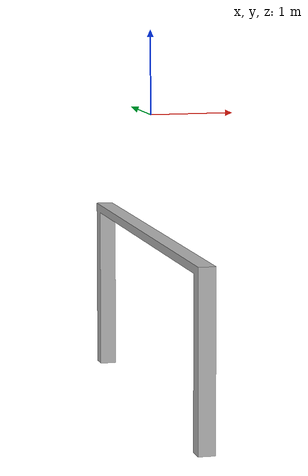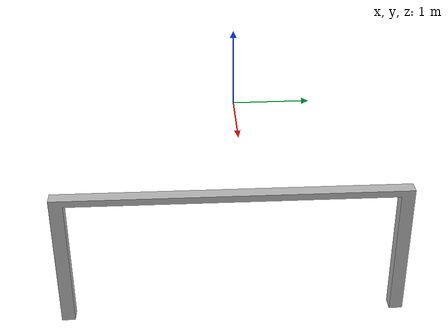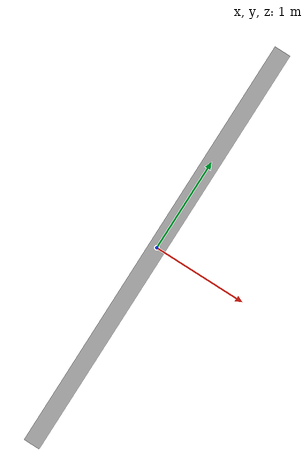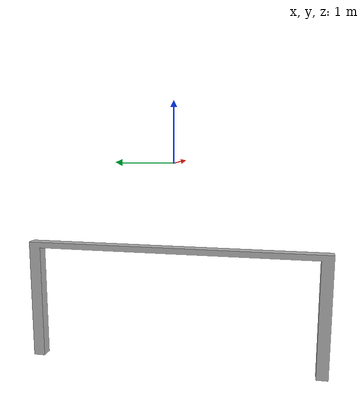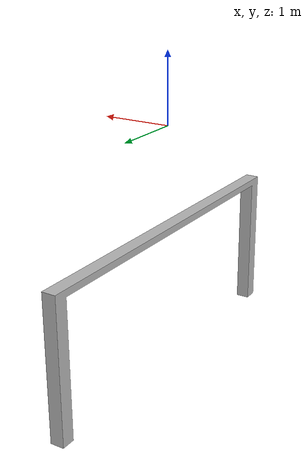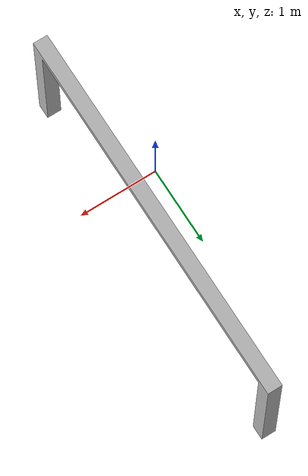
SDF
<?xml version="1.0"?>
<sdf version="1.4">
  <model name="gate">
    <static>true</static>
    <pose>0 0 0 0 0 0</pose>
    <link name="link">
      <collision name="right_collision">
        <pose>0 -2.5 -2.5 0 0 0</pose>
        <geometry>
          <box>
            <size>0.2 0.2 2.0</size>
          </box>
        </geometry>
      </collision>

      <collision name="left_collision">
        <pose>0 2.5 -2.5 0 0 0</pose>
        <geometry>
          <box>
            <size>0.2 0.2 2.0</size>
          </box>
        </geometry>
      </collision>

      <collision name="top_collision">
        <pose>0 0 -1.4 0 0 0</pose>
        <geometry>
          <box>
            <size>0.2 5.2 0.2</size>
          </box>
        </geometry>
      </collision>

      <visual name="visual">
        <pose>0 0 -3.5 0 0 0</pose>
        <geometry>
          <mesh>
            <uri>model://gate/meshes/gate.dae</uri>
            <scale>1 1 0.5</scale>
          </mesh>
        </geometry>
        <material>
          <script>
            <uri>model://gate/materials/scripts/gate.material</uri>
            <uri>model://gate/materials/textures</uri>
            <name>vrc/gate</name>
          </script>
        </material>
      </visual>

    </link>
  </model>
</sdf>
